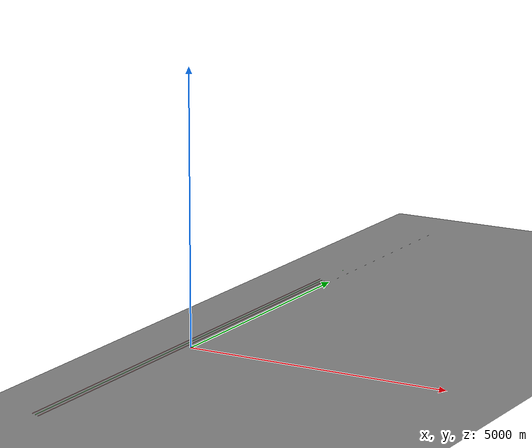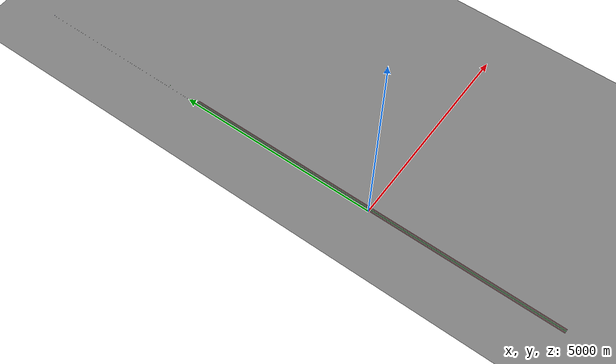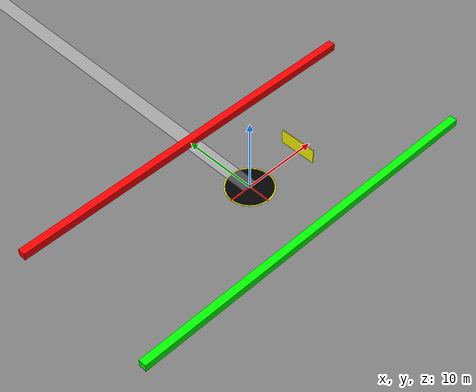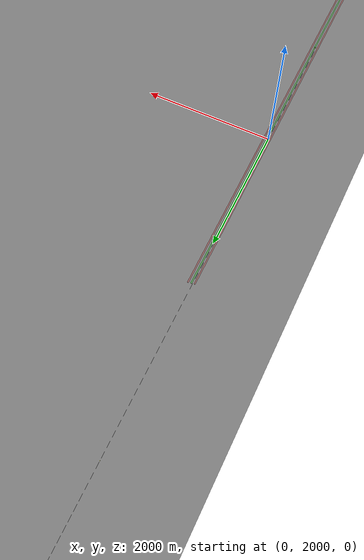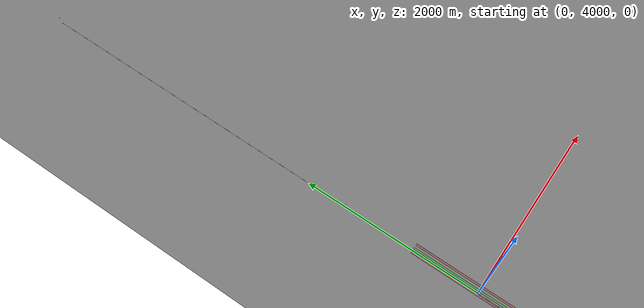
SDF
<?xml version="1.0" ?>

<sdf version="1.8">
  <world name="darpa_lift_challenge">

    <!-- Physics settings - 1ms timestep for accurate simulation -->
    <physics name="1ms" type="ignored">
      <max_step_size>0.001</max_step_size>
      <real_time_factor>1.0</real_time_factor>
    </physics>

    <!-- Plugin to enable the spherical coordinates for GPS -->
    <plugin
      filename="gz-sim-physics-system"
      name="gz::sim::systems::Physics">
    </plugin>
    <plugin
      filename="gz-sim-user-commands-system"
      name="gz::sim::systems::UserCommands">
    </plugin>
    <plugin
      filename="gz-sim-scene-broadcaster-system"
      name="gz::sim::systems::SceneBroadcaster">
    </plugin>
    <plugin
      filename="gz-sim-sensors-system"
      name="gz::sim::systems::Sensors">
      <render_engine>ogre2</render_engine>
    </plugin>
    <plugin
      filename="gz-sim-imu-system"
      name="gz::sim::systems::Imu">
    </plugin>
    <plugin
      filename="gz-sim-magnetometer-system"
      name="gz::sim::systems::Magnetometer">
    </plugin>
    <plugin
      filename="gz-sim-air-pressure-system"
      name="gz::sim::systems::AirPressure">
    </plugin>

    <!-- Set GPS reference point (example: somewhere in the US for testing) -->
    <!-- This ensures proper GPS coordinates for the mission -->
    <spherical_coordinates>
      <surface_model>EARTH_WGS84</surface_model>
      <world_frame_orientation>ENU</world_frame_orientation>
      <latitude_deg>37.7749</latitude_deg>
      <longitude_deg>-122.4194</longitude_deg>
      <elevation>0</elevation>
      <heading_deg>0</heading_deg>
    </spherical_coordinates>

    <!-- GUI Configuration -->
    <gui fullscreen="0">
      <plugin filename="GzScene3D" name="3D View">
        <gz-gui>
          <title>3D View</title>
          <property type="bool" key="showTitleBar">false</property>
          <property type="string" key="state">docked</property>
        </gz-gui>
        <engine>ogre2</engine>
        <scene>scene</scene>
        <ambient_light>0.4 0.4 0.4</ambient_light>
        <background_color>0.8 0.8 0.8</background_color>
        <camera_pose>-150 -150 200 0 0.5 0.78</camera_pose>
      </plugin>

      <plugin filename="WorldControl" name="World control">
        <gz-gui>
          <title>World control</title>
          <property type="bool" key="showTitleBar">false</property>
          <property type="bool" key="resizable">false</property>
          <property type="double" key="height">72</property>
          <property type="double" key="width">121</property>
          <property type="double" key="z">1</property>
          <property type="string" key="state">floating</property>
          <anchors target="3D View">
            <line own="left" target="left"/>
            <line own="bottom" target="bottom"/>
          </anchors>
        </gz-gui>
        <play_pause>true</play_pause>
        <step>true</step>
        <start_paused>false</start_paused>
      </plugin>

      <plugin filename="WorldStats" name="World stats">
        <gz-gui>
          <title>World stats</title>
          <property type="bool" key="showTitleBar">false</property>
          <property type="bool" key="resizable">false</property>
          <property type="double" key="height">110</property>
          <property type="double" key="width">290</property>
          <property type="double" key="z">1</property>
          <property type="string" key="state">floating</property>
          <anchors target="3D View">
            <line own="right" target="right"/>
            <line own="bottom" target="bottom"/>
          </anchors>
        </gz-gui>
        <sim_time>true</sim_time>
        <real_time>true</real_time>
        <real_time_factor>true</real_time_factor>
        <iterations>true</iterations>
      </plugin>
    </gui>

    <!-- Lighting - Sun -->
    <light type="directional" name="sun">
      <cast_shadows>true</cast_shadows>
      <pose>0 0 10 0 0 0</pose>
      <diffuse>0.8 0.8 0.8 1</diffuse>
      <specular>0.2 0.2 0.2 1</specular>
      <attenuation>
        <range>1000</range>
        <constant>0.9</constant>
        <linear>0.01</linear>
        <quadratic>0.001</quadratic>
      </attenuation>
      <direction>-0.5 0.1 -0.9</direction>
    </light>

    <!-- Ground plane - large enough for the entire course -->
    <model name="ground_plane">
      <static>true</static>
      <link name="link">
        <collision name="collision">
          <geometry>
            <plane>
              <normal>0 0 1</normal>
              <size>20000 20000</size>
            </plane>
          </geometry>
        </collision>
        <visual name="visual">
          <geometry>
            <plane>
              <normal>0 0 1</normal>
              <size>20000 20000</size>
            </plane>
          </geometry>
          <material>
            <ambient>0.5 0.5 0.5 1</ambient>
            <diffuse>0.5 0.5 0.5 1</diffuse>
            <specular>0.1 0.1 0.1 1</specular>
          </material>
        </visual>
      </link>
    </model>

    <!-- TAKEOFF/LANDING ZONE                      -->
    <!-- Location: (0, 0, 0)                       -->
    <!-- Landing circle: 10 ft (3.05m) radius      -->

    <model name="takeoff_landing_zone">
      <static>true</static>
      <pose>0 0 0.01 0 0 0</pose>
      <link name="link">
        <visual name="circle_outer">
          <geometry>
            <cylinder>
              <radius>3.05</radius>
              <length>0.02</length>
            </cylinder>
          </geometry>
          <material>
            <ambient>1 1 0 1</ambient>
            <diffuse>1 1 0 1</diffuse>
          </material>
        </visual>
        <visual name="circle_inner">
          <geometry>
            <cylinder>
              <radius>2.9</radius>
              <length>0.03</length>
            </cylinder>
          </geometry>
          <material>
            <ambient>0 0 0 1</ambient>
            <diffuse>0 0 0 1</diffuse>
          </material>
        </visual>
        <visual name="crosshair_ns">
          <pose>0 0 0.02 0 0 0</pose>
          <geometry>
            <box>
              <size>0.2 6 0.01</size>
            </box>
          </geometry>
          <material>
            <ambient>1 0 0 1</ambient>
            <diffuse>1 0 0 1</diffuse>
          </material>
        </visual>
        <visual name="crosshair_ew">
          <pose>0 0 0.02 0 0 0</pose>
          <geometry>
            <box>
              <size>6 0.2 0.01</size>
            </box>
          </geometry>
          <material>
            <ambient>1 0 0 1</ambient>
            <diffuse>1 0 0 1</diffuse>
          </material>
        </visual>
      </link>
    </model>

    <!-- Text label for Takeoff/Landing Zone -->
    <model name="takeoff_label">
      <static>true</static>
      <pose>8 0 1 0 0 0</pose>
      <link name="link">
        <visual name="text">
          <geometry>
            <box>
              <size>0.1 5 2</size>
            </box>
          </geometry>
          <material>
            <ambient>1 1 0 1</ambient>
            <diffuse>1 1 0 1</diffuse>
          </material>
        </visual>
      </link>
    </model>

    <!-- WAYPOINT 1 - 1 Nautical Mile             -->
    <!-- Location: (0, 1852, 106.68)              -->

    <model name="waypoint_1">
      <static>true</static>
      <pose>0 1852 106.68 0 0 0</pose>
      <link name="link">
        <visual name="marker">
          <geometry>
            <sphere>
              <radius>2</radius>
            </sphere>
          </geometry>
          <material>
            <ambient>0 1 0 1</ambient>
            <diffuse>0 1 0 1</diffuse>
          </material>
        </visual>
        <!-- Vertical pole to show altitude reference -->
        <visual name="pole">
          <pose>0 0 -53.34 0 0 0</pose>
          <geometry>
            <cylinder>
              <radius>0.2</radius>
              <length>106.68</length>
            </cylinder>
          </geometry>
          <material>
            <ambient>0 1 0 0.5</ambient>
            <diffuse>0 1 0 0.5</diffuse>
          </material>
        </visual>
      </link>
    </model>

    <!-- WAYPOINT 2 - 2 Nautical Miles            -->
    <!-- Location: (0, 3704, 106.68)              -->

    <model name="waypoint_2">
      <static>true</static>
      <pose>0 3704 106.68 0 0 0</pose>
      <link name="link">
        <visual name="marker">
          <geometry>
            <sphere>
              <radius>2</radius>
            </sphere>
          </geometry>
          <material>
            <ambient>0 1 0 1</ambient>
            <diffuse>0 1 0 1</diffuse>
          </material>
        </visual>
        <visual name="pole">
          <pose>0 0 -53.34 0 0 0</pose>
          <geometry>
            <cylinder>
              <radius>0.2</radius>
              <length>106.68</length>
            </cylinder>
          </geometry>
          <material>
            <ambient>0 1 0 0.5</ambient>
            <diffuse>0 1 0 0.5</diffuse>
          </material>
        </visual>
      </link>
    </model>

    <!-- WAYPOINT 3 - 3 Nautical Miles            -->
    <!-- Location: (0, 5556, 106.68)              -->

    <model name="waypoint_3">
      <static>true</static>
      <pose>0 5556 106.68 0 0 0</pose>
      <link name="link">
        <visual name="marker">
          <geometry>
            <sphere>
              <radius>2</radius>
            </sphere>
          </geometry>
          <material>
            <ambient>0 1 0 1</ambient>
            <diffuse>0 1 0 1</diffuse>
          </material>
        </visual>
        <visual name="pole">
          <pose>0 0 -53.34 0 0 0</pose>
          <geometry>
            <cylinder>
              <radius>0.2</radius>
              <length>106.68</length>
            </cylinder>
          </geometry>
          <material>
            <ambient>0 1 0 0.5</ambient>
            <diffuse>0 1 0 0.5</diffuse>
          </material>
        </visual>
      </link>
    </model>

    <!-- PAYLOAD DROPOFF ZONE - 4 Nautical Miles  -->
    <!-- Location: (0, 7408, 0)                   -->
    <!-- CRITICAL: Payload MUST be released here  -->

    <model name="payload_dropoff_zone">
      <static>true</static>
      <pose>0 7408 0.01 0 0 0</pose>
      <link name="link">
        <visual name="circle_outer">
          <geometry>
            <cylinder>
              <radius>5</radius>
              <length>0.02</length>
            </cylinder>
          </geometry>
          <material>
            <ambient>1 0 0 1</ambient>
            <diffuse>1 0 0 1</diffuse>
          </material>
        </visual>
        <visual name="circle_middle">
          <geometry>
            <cylinder>
              <radius>4.5</radius>
              <length>0.03</length>
            </cylinder>
          </geometry>
          <material>
            <ambient>1 1 1 1</ambient>
            <diffuse>1 1 1 1</diffuse>
          </material>
        </visual>
        <visual name="circle_inner">
          <geometry>
            <cylinder>
              <radius>4</radius>
              <length>0.04</length>
            </cylinder>
          </geometry>
          <material>
            <ambient>1 0 0 1</ambient>
            <diffuse>1 0 0 1</diffuse>
          </material>
        </visual>
        <!-- X marker to show dropoff point -->
        <visual name="x_mark_1">
          <pose>0 0 0.03 0 0 0.785</pose>
          <geometry>
            <box>
              <size>0.3 8 0.05</size>
            </box>
          </geometry>
          <material>
            <ambient>1 1 0 1</ambient>
            <diffuse>1 1 0 1</diffuse>
          </material>
        </visual>
        <visual name="x_mark_2">
          <pose>0 0 0.03 0 0 -0.785</pose>
          <geometry>
            <box>
              <size>0.3 8 0.05</size>
            </box>
          </geometry>
          <material>
            <ambient>1 1 0 1</ambient>
            <diffuse>1 1 0 1</diffuse>
          </material>
        </visual>
      </link>
    </model>

    <!-- Label for payload dropoff -->
    <model name="dropoff_label">
      <static>true</static>
      <pose>10 7408 2 0 0 0</pose>
      <link name="link">
        <visual name="text">
          <geometry>
            <box>
              <size>0.1 8 3</size>
            </box>
          </geometry>
          <material>
            <ambient>1 0 0 1</ambient>
            <diffuse>1 0 0 1</diffuse>
          </material>
        </visual>
      </link>
    </model>

    <!-- WAYPOINT 4 - 5 Nautical Miles            -->
    <!-- Location: (0, 9260, 106.68)              -->
    <!-- Flight WITHOUT payload after dropoff      -->

    <model name="waypoint_4">
      <static>true</static>
      <pose>0 9260 106.68 0 0 0</pose>
      <link name="link">
        <visual name="marker">
          <geometry>
            <sphere>
              <radius>2</radius>
            </sphere>
          </geometry>
          <material>
            <ambient>0 0 1 1</ambient>
            <diffuse>0 0 1 1</diffuse>
          </material>
        </visual>
        <visual name="pole">
          <pose>0 0 -53.34 0 0 0</pose>
          <geometry>
            <cylinder>
              <radius>0.2</radius>
              <length>106.68</length>
            </cylinder>
          </geometry>
          <material>
            <ambient>0 0 1 0.5</ambient>
            <diffuse>0 0 1 0.5</diffuse>
          </material>
        </visual>
      </link>
    </model>

    <!-- ALTITUDE REFERENCE MARKERS                -->
    <!-- Show min (91.44m) and max (121.92m) alt   -->
    <!-- Target: 350 ft (106.68m) ± 50 ft          -->

    <!-- Minimum altitude marker (300 ft / 91.44m) -->
    <model name="altitude_min_marker">
      <static>true</static>
      <pose>50 0 91.44 0 0 0</pose>
      <link name="link">
        <visual name="plane">
          <geometry>
            <box>
              <size>20 9500 0.1</size>
            </box>
          </geometry>
          <material>
            <ambient>1 0 0 0.2</ambient>
            <diffuse>1 0 0 0.2</diffuse>
          </material>
        </visual>
      </link>
    </model>

    <!-- Target altitude marker (350 ft / 106.68m) -->
    <model name="altitude_target_marker">
      <static>true</static>
      <pose>0 0 106.68 0 0 0</pose>
      <link name="link">
        <visual name="plane">
          <geometry>
            <box>
              <size>20 9500 0.1</size>
            </box>
          </geometry>
          <material>
            <ambient>0 1 0 0.3</ambient>
            <diffuse>0 1 0 0.3</diffuse>
          </material>
        </visual>
      </link>
    </model>

    <!-- Maximum altitude marker (400 ft / 121.92m) -->
    <model name="altitude_max_marker">
      <static>true</static>
      <pose>-50 0 121.92 0 0 0</pose>
      <link name="link">
        <visual name="plane">
          <geometry>
            <box>
              <size>20 9500 0.1</size>
            </box>
          </geometry>
          <material>
            <ambient>1 0 0 0.2</ambient>
            <diffuse>1 0 0 0.2</diffuse>
          </material>
        </visual>
      </link>
    </model>

    <!-- COURSE BOUNDARY MARKERS                   -->
    <!-- Visual guides for the flight path         -->

    <!-- Start line -->
    <model name="start_line">
      <static>true</static>
      <pose>0 -10 0.5 0 0 0</pose>
      <link name="link">
        <visual name="line">
          <geometry>
            <box>
              <size>50 1 1</size>
            </box>
          </geometry>
          <material>
            <ambient>0 1 0 1</ambient>
            <diffuse>0 1 0 1</diffuse>
          </material>
        </visual>
      </link>
    </model>

    <!-- Finish line (after 5nm, return to start) -->
    <model name="finish_line">
      <static>true</static>
      <pose>0 10 0.5 0 0 0</pose>
      <link name="link">
        <visual name="line">
          <geometry>
            <box>
              <size>50 1 1</size>
            </box>
          </geometry>
          <material>
            <ambient>1 0 0 1</ambient>
            <diffuse>1 0 0 1</diffuse>
          </material>
        </visual>
      </link>
    </model>

    <!-- Course centerline guide -->
    <model name="course_centerline">
      <static>true</static>
      <pose>0 4630 0.1 0 0 0</pose>
      <link name="link">
        <visual name="line">
          <geometry>
            <box>
              <size>2 9260 0.1</size>
            </box>
          </geometry>
          <material>
            <ambient>1 1 1 0.3</ambient>
            <diffuse>1 1 1 0.3</diffuse>
          </material>
        </visual>
      </link>
    </model>

  </world>
</sdf>
